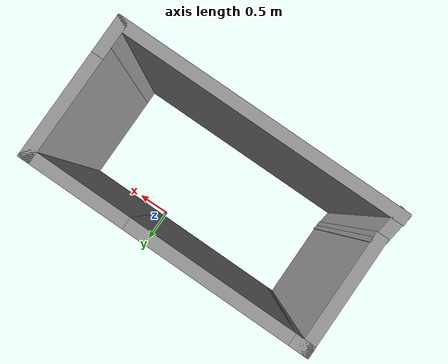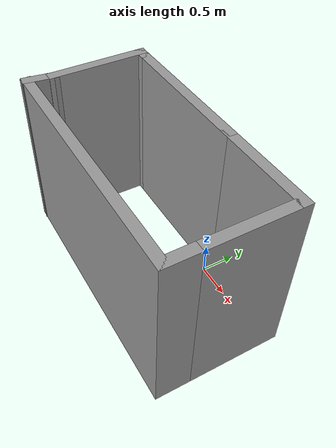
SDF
<?xml version='1.0'?>
<sdf version='1.7'>
  <model name='turtlebot3_mine.world'>
    <pose>-0.444926 -0.724926 0 0 -0 0</pose>
    <link name='Wall_0'>
      <collision name='Wall_0_Collision'>
        <geometry>
          <box>
            <size>1.5 0.15 2.5</size>
          </box>
        </geometry>
        <pose>0 0 1.25 0 -0 0</pose>
      </collision>
      <visual name='Wall_0_Visual'>
        <pose>0 0 1.25 0 -0 0</pose>
        <geometry>
          <box>
            <size>1.5 0.15 2.5</size>
          </box>
        </geometry>
        <material>
          <script>
            <uri>file://media/materials/scripts/gazebo.material</uri>
            <name>Gazebo/Grey</name>
          </script>
          <ambient>1 1 1 1</ambient>
        </material>
        <meta>
          <layer>0</layer>
        </meta>
      </visual>
      <pose>-1.74507 0.179926 0 0 -0 1.5708</pose>
    </link>
    <link name='Wall_1'>
      <collision name='Wall_1_Collision'>
        <geometry>
          <box>
            <size>0.25 0.15 2.5</size>
          </box>
        </geometry>
        <pose>0 0 1.25 0 -0 0</pose>
      </collision>
      <visual name='Wall_1_Visual'>
        <pose>0 0 1.25 0 -0 0</pose>
        <geometry>
          <box>
            <size>0.25 0.15 2.5</size>
          </box>
        </geometry>
        <material>
          <script>
            <uri>file://media/materials/scripts/gazebo.material</uri>
            <name>Gazebo/Grey</name>
          </script>
          <ambient>1 1 1 1</ambient>
        </material>
        <meta>
          <layer>0</layer>
        </meta>
      </visual>
      <pose>-1.69507 0.854926 0 0 -0 0</pose>
    </link>
    <link name='Wall_2'>
      <collision name='Wall_2_Collision'>
        <geometry>
          <box>
            <size>2.25 0.15 2.5</size>
          </box>
        </geometry>
        <pose>0 0 1.25 0 -0 0</pose>
      </collision>
      <visual name='Wall_2_Visual'>
        <pose>0 0 1.25 0 -0 0</pose>
        <geometry>
          <box>
            <size>2.25 0.15 2.5</size>
          </box>
        </geometry>
        <material>
          <script>
            <uri>file://media/materials/scripts/gazebo.material</uri>
            <name>Gazebo/Grey</name>
          </script>
          <ambient>1 1 1 1</ambient>
        </material>
        <meta>
          <layer>0</layer>
        </meta>
      </visual>
      <pose>-0.595074 0.854926 0 0 -0 0</pose>
    </link>
    <link name='Wall_3'>
      <collision name='Wall_3_Collision'>
        <geometry>
          <box>
            <size>1.5 0.15 2.5</size>
          </box>
        </geometry>
        <pose>0 0 1.25 0 -0 0</pose>
      </collision>
      <visual name='Wall_3_Visual'>
        <pose>0 0 1.25 0 -0 0</pose>
        <geometry>
          <box>
            <size>1.5 0.15 2.5</size>
          </box>
        </geometry>
        <material>
          <script>
            <uri>file://media/materials/scripts/gazebo.material</uri>
            <name>Gazebo/Grey</name>
          </script>
          <ambient>1 1 1 1</ambient>
        </material>
        <meta>
          <layer>0</layer>
        </meta>
      </visual>
      <pose>1.12993 0.854926 0 0 -0 0</pose>
    </link>
    <link name='Wall_4'>
      <collision name='Wall_4_Collision'>
        <geometry>
          <box>
            <size>1.5 0.15 2.5</size>
          </box>
        </geometry>
        <pose>0 0 1.25 0 -0 0</pose>
      </collision>
      <visual name='Wall_4_Visual'>
        <pose>0 0 1.25 0 -0 0</pose>
        <geometry>
          <box>
            <size>1.5 0.15 2.5</size>
          </box>
        </geometry>
        <material>
          <script>
            <uri>file://media/materials/scripts/gazebo.material</uri>
            <name>Gazebo/Grey</name>
          </script>
          <ambient>1 1 1 1</ambient>
        </material>
        <meta>
          <layer>0</layer>
        </meta>
      </visual>
      <pose>1.80493 0.179926 0 0 -0 -1.5708</pose>
    </link>
    <link name='Wall_5'>
      <collision name='Wall_5_Collision'>
        <geometry>
          <box>
            <size>0.5 0.15 2.5</size>
          </box>
        </geometry>
        <pose>0 0 1.25 0 -0 0</pose>
      </collision>
      <visual name='Wall_5_Visual'>
        <pose>0 0 1.25 0 -0 0</pose>
        <geometry>
          <box>
            <size>0.5 0.15 2.5</size>
          </box>
        </geometry>
        <material>
          <script>
            <uri>file://media/materials/scripts/gazebo.material</uri>
            <name>Gazebo/Grey</name>
          </script>
          <ambient>1 1 1 1</ambient>
        </material>
        <meta>
          <layer>0</layer>
        </meta>
      </visual>
      <pose>1.80493 -0.670074 0 0 -0 -1.5708</pose>
    </link>
    <link name='Wall_6'>
      <collision name='Wall_6_Collision'>
        <geometry>
          <box>
            <size>3.75 0.15 2.5</size>
          </box>
        </geometry>
        <pose>0 0 1.25 0 -0 0</pose>
      </collision>
      <visual name='Wall_6_Visual'>
        <pose>0 0 1.25 0 -0 0</pose>
        <geometry>
          <box>
            <size>3.75 0.15 2.5</size>
          </box>
        </geometry>
        <material>
          <script>
            <uri>file://media/materials/scripts/gazebo.material</uri>
            <name>Gazebo/Grey</name>
          </script>
          <ambient>1 1 1 1</ambient>
        </material>
        <meta>
          <layer>0</layer>
        </meta>
      </visual>
      <pose>0.004926 -0.845074 0 0 -0 3.14159</pose>
    </link>
    <link name='Wall_7'>
      <collision name='Wall_7_Collision'>
        <geometry>
          <box>
            <size>0.503553 0.15 2.5</size>
          </box>
        </geometry>
        <pose>0 0 1.25 0 -0 0</pose>
      </collision>
      <visual name='Wall_7_Visual'>
        <pose>0 0 1.25 0 -0 0</pose>
        <geometry>
          <box>
            <size>0.503553 0.15 2.5</size>
          </box>
        </geometry>
        <material>
          <script>
            <uri>file://media/materials/scripts/gazebo.material</uri>
            <name>Gazebo/Grey</name>
          </script>
          <ambient>1 1 1 1</ambient>
        </material>
        <meta>
          <layer>0</layer>
        </meta>
      </visual>
      <pose>-1.77007 -0.670074 0 0 -0 1.4289</pose>
    </link>
    <static>1</static>
  </model>
</sdf>
